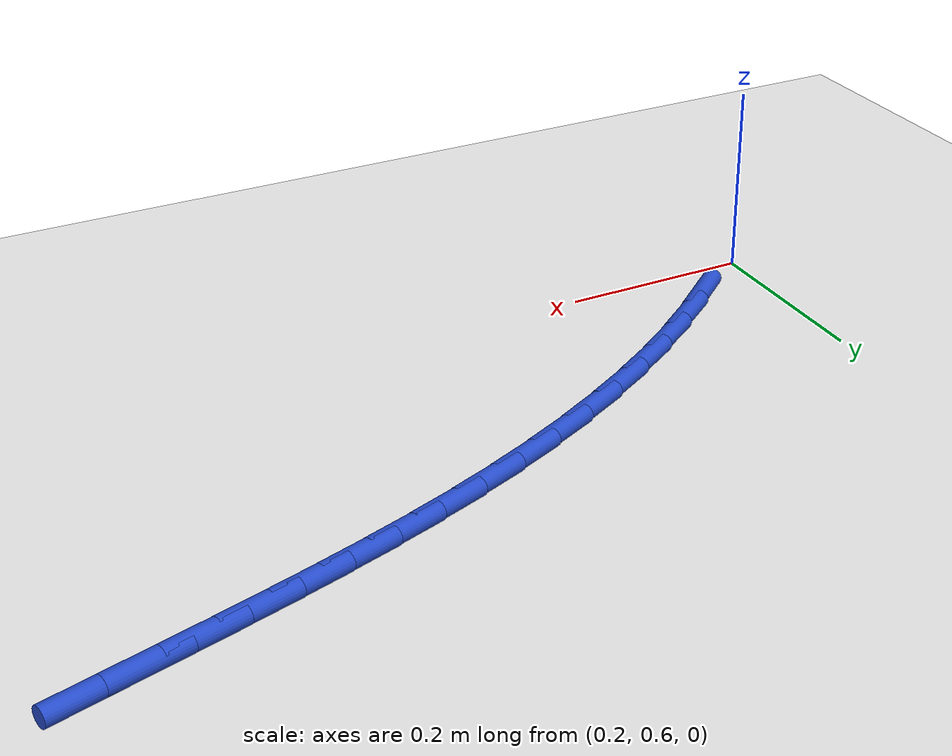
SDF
<sdf version="1.6">
 <world name="default">
  <model name="ground_plane">
   <static>1</static>
   <link name="link">
    <collision name="collision">
     <geometry><plane><normal>0 0 1</normal><size>100 100</size></plane></geometry>
     <surface><friction><ode><mu>100</mu><mu2>50</mu2></ode></friction></surface>
    </collision>
    <visual name="visual">
     <cast_shadows>0</cast_shadows>
     <geometry><plane><normal>0 0 1</normal><size>100 100</size></plane></geometry>
     <material>
      <script><uri>file://media/materials/scripts/gazebo.material</uri><name>Gazebo/WhiteGlow</name></script>
     </material>
    </visual>
   </link>
  </model>
  <model name="line">
   <link name="link_14">
    <pose>0.2792579527666148 0.6585146687745349 0.01 0 1.57 0.692423673247967</pose>
    <collision name="collision">
     <geometry><cylinder><radius>0.01</radius><length>0.08</length></cylinder></geometry>
    </collision>
    <visual name="visual">
     <material>
      <script><name>Gazebo/Blue</name><uri>file://media/materials/scripts/gazebo.material</uri></script>
     </material>
     <geometry><cylinder><radius>0.01</radius><length>0.08</length></cylinder></geometry>
    </visual>
   </link>
   <link name="link_15">
    <pose>0.32036203856363393 0.6926071748339817 0.01 0 1.57 0.6420475215268671</pose>
    <collision name="collision">
     <geometry><cylinder><radius>0.01</radius><length>0.08</length></cylinder></geometry>
    </collision>
    <visual name="visual">
     <material>
      <script><name>Gazebo/Blue</name><uri>file://media/materials/scripts/gazebo.material</uri></script>
     </material>
     <geometry><cylinder><radius>0.01</radius><length>0.08</length></cylinder></geometry>
    </visual>
   </link>
   <link name="link_16">
    <pose>0.3633217407448923 0.7247294862880473 0.01 0 1.57 0.5950631333776353</pose>
    <collision name="collision">
     <geometry><cylinder><radius>0.01</radius><length>0.08</length></cylinder></geometry>
    </collision>
    <visual name="visual">
     <material>
      <script><name>Gazebo/Blue</name><uri>file://media/materials/scripts/gazebo.material</uri></script>
     </material>
     <geometry><cylinder><radius>0.01</radius><length>0.08</length></cylinder></geometry>
    </visual>
   </link>
   <link name="link_17">
    <pose>0.4078752573283192 0.75488836815289 0.01 0 1.57 0.5511010465311429</pose>
    <collision name="collision">
     <geometry><cylinder><radius>0.01</radius><length>0.08</length></cylinder></geometry>
    </collision>
    <visual name="visual">
     <material>
      <script><name>Gazebo/Blue</name><uri>file://media/materials/scripts/gazebo.material</uri></script>
     </material>
     <geometry><cylinder><radius>0.01</radius><length>0.08</length></cylinder></geometry>
    </visual>
   </link>
   <link name="link_18">
    <pose>0.4537607863318446 0.7830905854446694 0.01 0 1.57 0.5097925968657221</pose>
    <collision name="collision">
     <geometry><cylinder><radius>0.01</radius><length>0.08</length></cylinder></geometry>
    </collision>
    <visual name="visual">
     <material>
      <script><name>Gazebo/Blue</name><uri>file://media/materials/scripts/gazebo.material</uri></script>
     </material>
     <geometry><cylinder><radius>0.01</radius><length>0.08</length></cylinder></geometry>
    </visual>
   </link>
   <link name="link_19">
    <pose>0.5007165257733983 0.8093429031795442 0.01 0 1.57 0.47077562963897324</pose>
    <collision name="collision">
     <geometry><cylinder><radius>0.01</radius><length>0.08</length></cylinder></geometry>
    </collision>
    <visual name="visual">
     <material>
      <script><name>Gazebo/Blue</name><uri>file://media/materials/scripts/gazebo.material</uri></script>
     </material>
     <geometry><cylinder><radius>0.01</radius><length>0.08</length></cylinder></geometry>
    </visual>
   </link>
   <link name="link_20">
    <pose>0.5484806736709097 0.8336520863736734 0.01 0 1.57 0.43369608852397007</pose>
    <collision name="collision">
     <geometry><cylinder><radius>0.01</radius><length>0.08</length></cylinder></geometry>
    </collision>
    <visual name="visual">
     <material>
      <script><name>Gazebo/Blue</name><uri>file://media/materials/scripts/gazebo.material</uri></script>
     </material>
     <geometry><cylinder><radius>0.01</radius><length>0.08</length></cylinder></geometry>
    </visual>
   </link>
   <link name="link_21">
    <pose>0.596791428042309 0.8560249000432161 0.01 0 1.57 0.39831295752321355</pose>
    <collision name="collision">
     <geometry><cylinder><radius>0.01</radius><length>0.08</length></cylinder></geometry>
    </collision>
    <visual name="visual">
     <material>
      <script><name>Gazebo/Blue</name><uri>file://media/materials/scripts/gazebo.material</uri></script>
     </material>
     <geometry><cylinder><radius>0.01</radius><length>0.08</length></cylinder></geometry>
    </visual>
   </link>
   <link name="link_22">
    <pose>0.6454022224663913 0.8764806152660959 0.01 0 1.57 0.36568056627548134</pose>
    <collision name="collision">
     <geometry><cylinder><radius>0.01</radius><length>0.08</length></cylinder></geometry>
    </collision>
    <visual name="visual">
     <material>
      <script><name>Gazebo/Blue</name><uri>file://media/materials/scripts/gazebo.material</uri></script>
     </material>
     <geometry><cylinder><radius>0.01</radius><length>0.08</length></cylinder></geometry>
    </visual>
   </link>
   <link name="link_23">
    <pose>0.6942394976727753 0.8951805154907069 0.01 0 1.57 0.33686442704909775</pose>
    <collision name="collision">
     <geometry><cylinder><radius>0.01</radius><length>0.08</length></cylinder></geometry>
    </collision>
    <visual name="visual">
     <material>
      <script><name>Gazebo/Blue</name><uri>file://media/materials/scripts/gazebo.material</uri></script>
     </material>
     <geometry><cylinder><radius>0.01</radius><length>0.08</length></cylinder></geometry>
    </visual>
   </link>
   <link name="link_24">
    <pose>0.7433393925436972 0.9123759295457358 0.01 0 1.57 0.3121901902370015</pose>
    <collision name="collision">
     <geometry><cylinder><radius>0.01</radius><length>0.08</length></cylinder></geometry>
    </collision>
    <visual name="visual">
     <material>
      <script><name>Gazebo/Blue</name><uri>file://media/materials/scripts/gazebo.material</uri></script>
     </material>
     <geometry><cylinder><radius>0.01</radius><length>0.08</length></cylinder></geometry>
    </visual>
   </link>
   <link name="link_25">
    <pose>0.7927397899340655 0.9283196177943008 0.01 0 1.57 0.29188259746215894</pose>
    <collision name="collision">
     <geometry><cylinder><radius>0.01</radius><length>0.08</length></cylinder></geometry>
    </collision>
    <visual name="visual">
     <material>
      <script><name>Gazebo/Blue</name><uri>file://media/materials/scripts/gazebo.material</uri></script>
     </material>
     <geometry><cylinder><radius>0.01</radius><length>0.08</length></cylinder></geometry>
    </visual>
   </link>
   <link name="link_26">
    <pose>0.842478572698789 0.9432643405995205 0.01 0 1.57 0.27608322642570193</pose>
    <collision name="collision">
     <geometry><cylinder><radius>0.01</radius><length>0.08</length></cylinder></geometry>
    </collision>
    <visual name="visual">
     <material>
      <script><name>Gazebo/Blue</name><uri>file://media/materials/scripts/gazebo.material</uri></script>
     </material>
     <geometry><cylinder><radius>0.01</radius><length>0.08</length></cylinder></geometry>
    </visual>
   </link>
   <link name="link_27">
    <pose>0.8925936236927763 0.957462858324513 0.01 0 1.57 0.2648585965971469</pose>
    <collision name="collision">
     <geometry><cylinder><radius>0.01</radius><length>0.08</length></cylinder></geometry>
    </collision>
    <visual name="visual">
     <material>
      <script><name>Gazebo/Blue</name><uri>file://media/materials/scripts/gazebo.material</uri></script>
     </material>
     <geometry><cylinder><radius>0.01</radius><length>0.08</length></cylinder></geometry>
    </visual>
   </link>
   <link name="link_28">
    <pose>0.9431228257709355 0.9711679313323965 0.01 0 1.57 0.2582090766575599</pose>
    <collision name="collision">
     <geometry><cylinder><radius>0.01</radius><length>0.08</length></cylinder></geometry>
    </collision>
    <visual name="visual">
     <material>
      <script><name>Gazebo/Blue</name><uri>file://media/materials/scripts/gazebo.material</uri></script>
     </material>
     <geometry><cylinder><radius>0.01</radius><length>0.08</length></cylinder></geometry>
    </visual>
   </link>
   <link name="link_29">
    <pose>0.994104061788176 0.9846323199862892 0.01 0 1.57 0.25607728607715263</pose>
    <collision name="collision">
     <geometry><cylinder><radius>0.01</radius><length>0.08</length></cylinder></geometry>
    </collision>
    <visual name="visual">
     <material>
      <script><name>Gazebo/Blue</name><uri>file://media/materials/scripts/gazebo.material</uri></script>
     </material>
     <geometry><cylinder><radius>0.01</radius><length>0.08</length></cylinder></geometry>
    </visual>
   </link>
   <link name="link_30">
    <pose>1.045575214599406 0.99810878464931 0.01 0 1.57 0.25750473893333053</pose>
    <collision name="collision">
     <geometry><cylinder><radius>0.01</radius><length>0.08</length></cylinder></geometry>
    </collision>
    <visual name="visual">
     <material>
      <script><name>Gazebo/Blue</name><uri>file://media/materials/scripts/gazebo.material</uri></script>
     </material>
     <geometry><cylinder><radius>0.01</radius><length>0.08</length></cylinder></geometry>
    </visual>
   </link>
  </model>
 </world>
</sdf>
